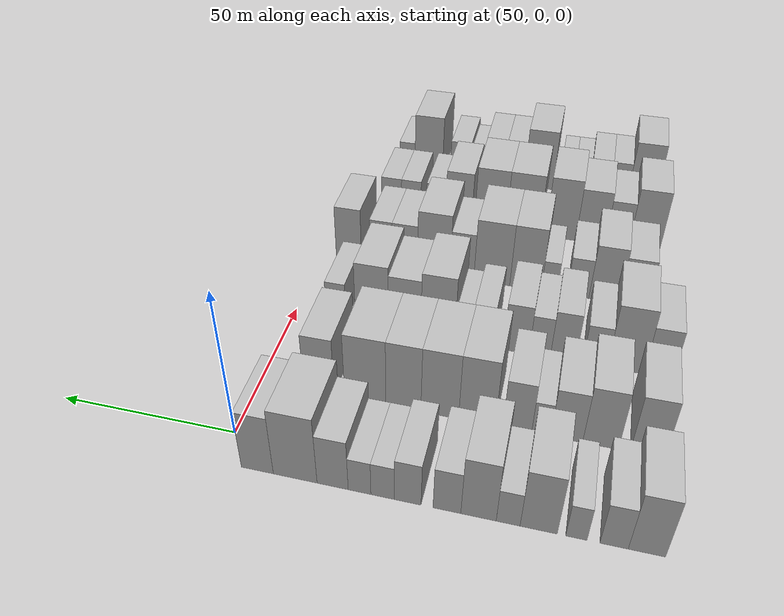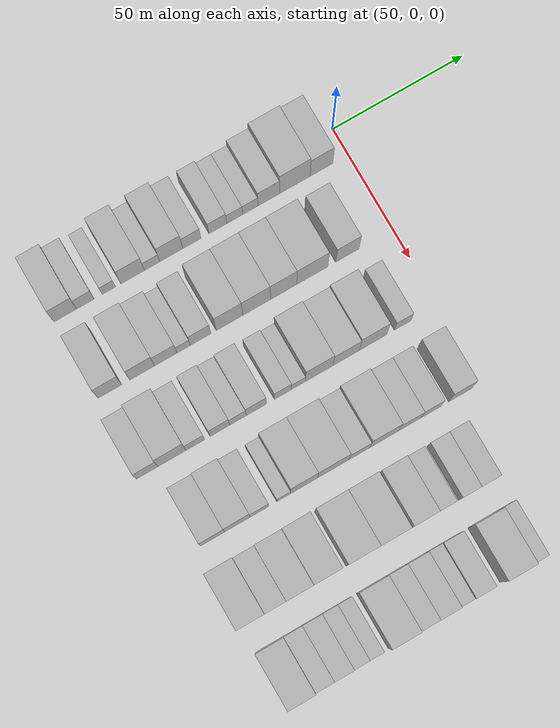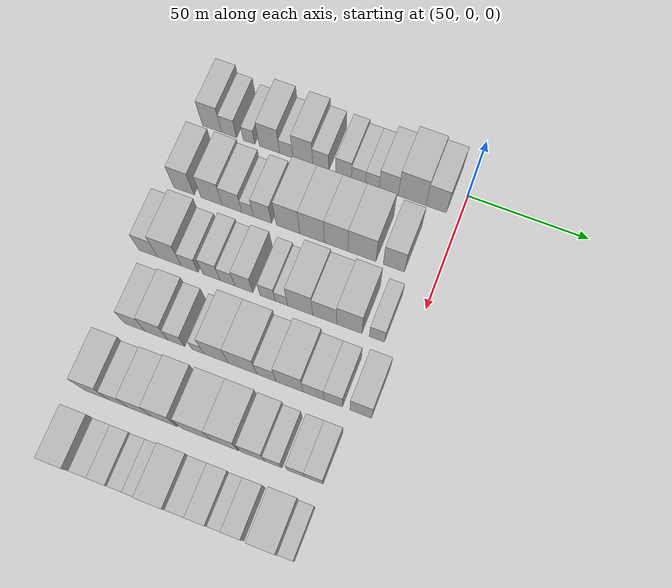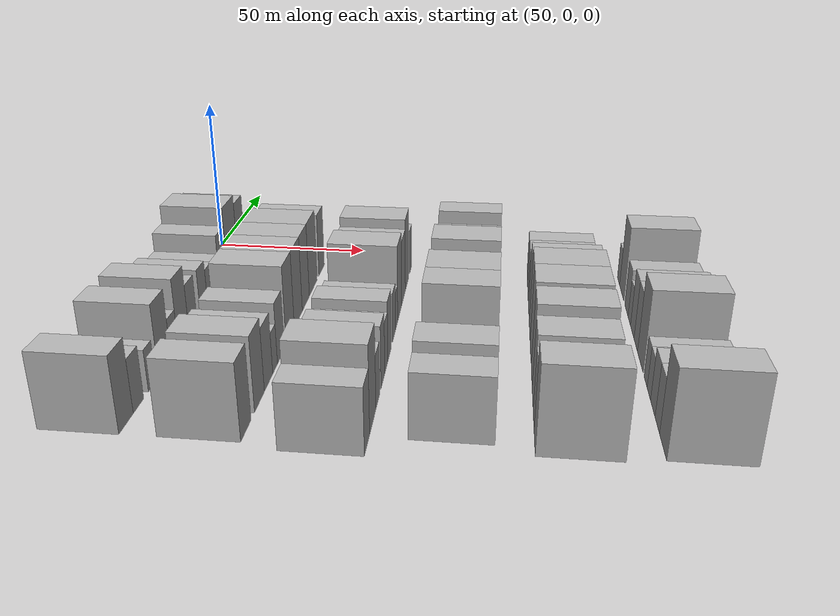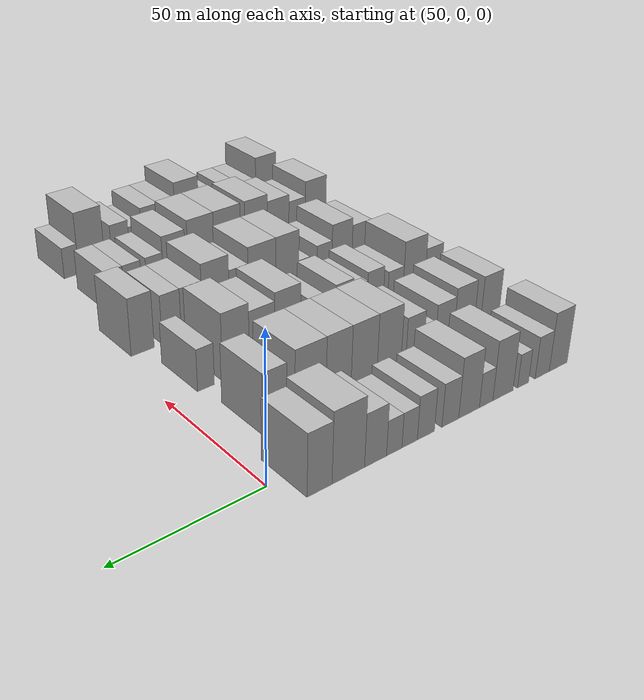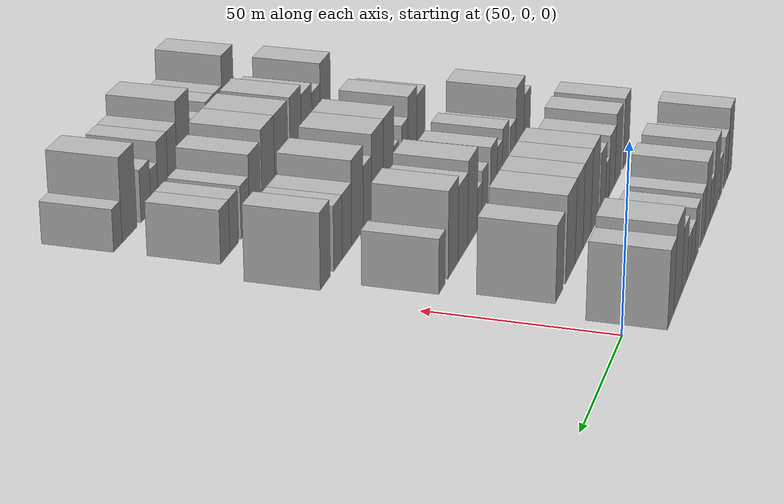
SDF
<sdf version="1.6">
 <world name="default">
  <model name="building_45">
   <static>1</static>
   <pose>50.0000 -106.6176 0 0.000000 0.000000 0.000000</pose>
   <link name="link">
    <pose>0 0 10.50 0 0 0</pose>
    <collision name="collision"><geometry><box><size>20.0000 8.4797 21.0000</size></box></geometry></collision>
    <visual name="visual">
     <cast_shadows>0</cast_shadows>
     <geometry><box><size>20.0000 8.4797 21.0000</size></box></geometry>
     <material>
      <script>
       <uri>model://HANNAS_wall/materials/scripts</uri>
       <uri>model://HANNAS_wall/materials/textures</uri>
       <name>vrc/HANNAS_wall</name>
      </script>
     </material>
    </visual>
   </link>
  </model>
  <model name="building_46">
   <static>1</static>
   <pose>50.0000 -99.1205 0 0.000000 0.000000 0.000000</pose>
   <link name="link">
    <pose>0 0 7.50 0 0 0</pose>
    <collision name="collision"><geometry><box><size>20.0000 6.5144 15.0000</size></box></geometry></collision>
    <visual name="visual">
     <cast_shadows>0</cast_shadows>
     <geometry><box><size>20.0000 6.5144 15.0000</size></box></geometry>
     <material>
      <script>
       <uri>model://HANNAS_wall/materials/scripts</uri>
       <uri>model://HANNAS_wall/materials/textures</uri>
       <name>vrc/HANNAS_wall</name>
      </script>
     </material>
    </visual>
   </link>
  </model>
  <model name="building_47">
   <static>1</static>
   <pose>50.0000 -90.3728 0 0.000000 0.000000 0.000000</pose>
   <link name="link">
    <pose>0 0 6.00 0 0 0</pose>
    <collision name="collision"><geometry><box><size>20.0000 4.9810 12.0000</size></box></geometry></collision>
    <visual name="visual">
     <cast_shadows>0</cast_shadows>
     <geometry><box><size>20.0000 4.9810 12.0000</size></box></geometry>
     <material>
      <script>
       <uri>model://HANNAS_wall/materials/scripts</uri>
       <uri>model://HANNAS_wall/materials/textures</uri>
       <name>vrc/HANNAS_wall</name>
      </script>
     </material>
    </visual>
   </link>
  </model>
  <model name="building_48">
   <static>1</static>
   <pose>50.0000 -81.4564 0 0.000000 0.000000 0.000000</pose>
   <link name="link">
    <pose>0 0 10.50 0 0 0</pose>
    <collision name="collision"><geometry><box><size>20.0000 8.8519 21.0000</size></box></geometry></collision>
    <visual name="visual">
     <cast_shadows>0</cast_shadows>
     <geometry><box><size>20.0000 8.8519 21.0000</size></box></geometry>
     <material>
      <script>
       <uri>model://HANNAS_wall/materials/scripts</uri>
       <uri>model://HANNAS_wall/materials/textures</uri>
       <name>vrc/HANNAS_wall</name>
      </script>
     </material>
    </visual>
   </link>
  </model>
  <model name="building_49">
   <static>1</static>
   <pose>50.0000 -74.1553 0 0.000000 0.000000 0.000000</pose>
   <link name="link">
    <pose>0 0 6.00 0 0 0</pose>
    <collision name="collision"><geometry><box><size>20.0000 5.7502 12.0000</size></box></geometry></collision>
    <visual name="visual">
     <cast_shadows>0</cast_shadows>
     <geometry><box><size>20.0000 5.7502 12.0000</size></box></geometry>
     <material>
      <script>
       <uri>model://HANNAS_wall/materials/scripts</uri>
       <uri>model://HANNAS_wall/materials/textures</uri>
       <name>vrc/HANNAS_wall</name>
      </script>
     </material>
    </visual>
   </link>
  </model>
  <model name="building_50">
   <static>1</static>
   <pose>50.0000 -66.9505 0 0.000000 0.000000 0.000000</pose>
   <link name="link">
    <pose>0 0 10.50 0 0 0</pose>
    <collision name="collision"><geometry><box><size>20.0000 8.6593 21.0000</size></box></geometry></collision>
    <visual name="visual">
     <cast_shadows>0</cast_shadows>
     <geometry><box><size>20.0000 8.6593 21.0000</size></box></geometry>
     <material>
      <script>
       <uri>model://HANNAS_wall/materials/scripts</uri>
       <uri>model://HANNAS_wall/materials/textures</uri>
       <name>vrc/HANNAS_wall</name>
      </script>
     </material>
    </visual>
   </link>
  </model>
  <model name="building_51">
   <static>1</static>
   <pose>50.0000 -59.1784 0 0.000000 0.000000 0.000000</pose>
   <link name="link">
    <pose>0 0 7.50 0 0 0</pose>
    <collision name="collision"><geometry><box><size>20.0000 6.8849 15.0000</size></box></geometry></collision>
    <visual name="visual">
     <cast_shadows>0</cast_shadows>
     <geometry><box><size>20.0000 6.8849 15.0000</size></box></geometry>
     <material>
      <script>
       <uri>model://HANNAS_wall/materials/scripts</uri>
       <uri>model://HANNAS_wall/materials/textures</uri>
       <name>vrc/HANNAS_wall</name>
      </script>
     </material>
    </visual>
   </link>
  </model>
  <model name="building_52">
   <static>1</static>
   <pose>50.0000 -49.3642 0 0.000000 0.000000 0.000000</pose>
   <link name="link">
    <pose>0 0 7.50 0 0 0</pose>
    <collision name="collision"><geometry><box><size>20.0000 6.7436 15.0000</size></box></geometry></collision>
    <visual name="visual">
     <cast_shadows>0</cast_shadows>
     <geometry><box><size>20.0000 6.7436 15.0000</size></box></geometry>
     <material>
      <script>
       <uri>model://HANNAS_wall/materials/scripts</uri>
       <uri>model://HANNAS_wall/materials/textures</uri>
       <name>vrc/HANNAS_wall</name>
      </script>
     </material>
    </visual>
   </link>
  </model>
  <model name="building_53">
   <static>1</static>
   <pose>50.0000 -43.0074 0 0.000000 0.000000 0.000000</pose>
   <link name="link">
    <pose>0 0 6.00 0 0 0</pose>
    <collision name="collision"><geometry><box><size>20.0000 5.9699 12.0000</size></box></geometry></collision>
    <visual name="visual">
     <cast_shadows>0</cast_shadows>
     <geometry><box><size>20.0000 5.9699 12.0000</size></box></geometry>
     <material>
      <script>
       <uri>model://HANNAS_wall/materials/scripts</uri>
       <uri>model://HANNAS_wall/materials/textures</uri>
       <name>vrc/HANNAS_wall</name>
      </script>
     </material>
    </visual>
   </link>
  </model>
  <model name="building_54">
   <static>1</static>
   <pose>50.0000 -37.0977 0 0.000000 0.000000 0.000000</pose>
   <link name="link">
    <pose>0 0 6.00 0 0 0</pose>
    <collision name="collision"><geometry><box><size>20.0000 5.8495 12.0000</size></box></geometry></collision>
    <visual name="visual">
     <cast_shadows>0</cast_shadows>
     <geometry><box><size>20.0000 5.8495 12.0000</size></box></geometry>
     <material>
      <script>
       <uri>model://HANNAS_wall/materials/scripts</uri>
       <uri>model://HANNAS_wall/materials/textures</uri>
       <name>vrc/HANNAS_wall</name>
      </script>
     </material>
    </visual>
   </link>
  </model>
  <model name="building_55">
   <static>1</static>
   <pose>50.0000 -30.1137 0 0.000000 0.000000 0.000000</pose>
   <link name="link">
    <pose>0 0 9.00 0 0 0</pose>
    <collision name="collision"><geometry><box><size>20.0000 8.1184 18.0000</size></box></geometry></collision>
    <visual name="visual">
     <cast_shadows>0</cast_shadows>
     <geometry><box><size>20.0000 8.1184 18.0000</size></box></geometry>
     <material>
      <script>
       <uri>model://HANNAS_wall/materials/scripts</uri>
       <uri>model://HANNAS_wall/materials/textures</uri>
       <name>vrc/HANNAS_wall</name>
      </script>
     </material>
    </visual>
   </link>
  </model>
  <model name="building_56">
   <static>1</static>
   <pose>50.0000 -20.2414 0 0.000000 0.000000 0.000000</pose>
   <link name="link">
    <pose>0 0 12.00 0 0 0</pose>
    <collision name="collision"><geometry><box><size>20.0000 11.6262 24.0000</size></box></geometry></collision>
    <visual name="visual">
     <cast_shadows>0</cast_shadows>
     <geometry><box><size>20.0000 11.6262 24.0000</size></box></geometry>
     <material>
      <script>
       <uri>model://HANNAS_wall/materials/scripts</uri>
       <uri>model://HANNAS_wall/materials/textures</uri>
       <name>vrc/HANNAS_wall</name>
      </script>
     </material>
    </visual>
   </link>
  </model>
  <model name="building_57">
   <static>1</static>
   <pose>50.0000 -10.1097 0 0.000000 0.000000 0.000000</pose>
   <link name="link">
    <pose>0 0 10.50 0 0 0</pose>
    <collision name="collision"><geometry><box><size>20.0000 8.6371 21.0000</size></box></geometry></collision>
    <visual name="visual">
     <cast_shadows>0</cast_shadows>
     <geometry><box><size>20.0000 8.6371 21.0000</size></box></geometry>
     <material>
      <script>
       <uri>model://HANNAS_wall/materials/scripts</uri>
       <uri>model://HANNAS_wall/materials/textures</uri>
       <name>vrc/HANNAS_wall</name>
      </script>
     </material>
    </visual>
   </link>
  </model>
  <model name="building_163">
   <static>1</static>
   <pose>79.0000 -106.3267 0 0.000000 0.000000 0.000000</pose>
   <link name="link">
    <pose>0 0 10.50 0 0 0</pose>
    <collision name="collision"><geometry><box><size>20.0000 8.7623 21.0000</size></box></geometry></collision>
    <visual name="visual">
     <cast_shadows>0</cast_shadows>
     <geometry><box><size>20.0000 8.7623 21.0000</size></box></geometry>
     <material>
      <script>
       <uri>model://HANNAS_wall/materials/scripts</uri>
       <uri>model://HANNAS_wall/materials/textures</uri>
       <name>vrc/HANNAS_wall</name>
      </script>
     </material>
    </visual>
   </link>
  </model>
  <model name="building_164">
   <static>1</static>
   <pose>79.0000 -94.3277 0 0.000000 0.000000 0.000000</pose>
   <link name="link">
    <pose>0 0 10.50 0 0 0</pose>
    <collision name="collision"><geometry><box><size>20.0000 9.2357 21.0000</size></box></geometry></collision>
    <visual name="visual">
     <cast_shadows>0</cast_shadows>
     <geometry><box><size>20.0000 9.2357 21.0000</size></box></geometry>
     <material>
      <script>
       <uri>model://HANNAS_wall/materials/scripts</uri>
       <uri>model://HANNAS_wall/materials/textures</uri>
       <name>vrc/HANNAS_wall</name>
      </script>
     </material>
    </visual>
   </link>
  </model>
  <model name="building_165">
   <static>1</static>
   <pose>79.0000 -85.5269 0 0.000000 0.000000 0.000000</pose>
   <link name="link">
    <pose>0 0 9.00 0 0 0</pose>
    <collision name="collision"><geometry><box><size>20.0000 8.3660 18.0000</size></box></geometry></collision>
    <visual name="visual">
     <cast_shadows>0</cast_shadows>
     <geometry><box><size>20.0000 8.3660 18.0000</size></box></geometry>
     <material>
      <script>
       <uri>model://HANNAS_wall/materials/scripts</uri>
       <uri>model://HANNAS_wall/materials/textures</uri>
       <name>vrc/HANNAS_wall</name>
      </script>
     </material>
    </visual>
   </link>
  </model>
  <model name="building_166">
   <static>1</static>
   <pose>79.0000 -78.8418 0 0.000000 0.000000 0.000000</pose>
   <link name="link">
    <pose>0 0 6.00 0 0 0</pose>
    <collision name="collision"><geometry><box><size>20.0000 5.0042 12.0000</size></box></geometry></collision>
    <visual name="visual">
     <cast_shadows>0</cast_shadows>
     <geometry><box><size>20.0000 5.0042 12.0000</size></box></geometry>
     <material>
      <script>
       <uri>model://HANNAS_wall/materials/scripts</uri>
       <uri>model://HANNAS_wall/materials/textures</uri>
       <name>vrc/HANNAS_wall</name>
      </script>
     </material>
    </visual>
   </link>
  </model>
  <model name="building_167">
   <static>1</static>
   <pose>79.0000 -72.4954 0 0.000000 0.000000 0.000000</pose>
   <link name="link">
    <pose>0 0 9.00 0 0 0</pose>
    <collision name="collision"><geometry><box><size>20.0000 7.6885 18.0000</size></box></geometry></collision>
    <visual name="visual">
     <cast_shadows>0</cast_shadows>
     <geometry><box><size>20.0000 7.6885 18.0000</size></box></geometry>
     <material>
      <script>
       <uri>model://HANNAS_wall/materials/scripts</uri>
       <uri>model://HANNAS_wall/materials/textures</uri>
       <name>vrc/HANNAS_wall</name>
      </script>
     </material>
    </visual>
   </link>
  </model>
  <model name="building_168">
   <static>1</static>
   <pose>79.0000 -61.6545 0 0.000000 0.000000 0.000000</pose>
   <link name="link">
    <pose>0 0 12.00 0 0 0</pose>
    <collision name="collision"><geometry><box><size>20.0000 9.9933 24.0000</size></box></geometry></collision>
    <visual name="visual">
     <cast_shadows>0</cast_shadows>
     <geometry><box><size>20.0000 9.9933 24.0000</size></box></geometry>
     <material>
      <script>
       <uri>model://HANNAS_wall/materials/scripts</uri>
       <uri>model://HANNAS_wall/materials/textures</uri>
       <name>vrc/HANNAS_wall</name>
      </script>
     </material>
    </visual>
   </link>
  </model>
  <model name="building_169">
   <static>1</static>
   <pose>79.0000 -51.4443 0 0.000000 0.000000 0.000000</pose>
   <link name="link">
    <pose>0 0 12.00 0 0 0</pose>
    <collision name="collision"><geometry><box><size>20.0000 10.4271 24.0000</size></box></geometry></collision>
    <visual name="visual">
     <cast_shadows>0</cast_shadows>
     <geometry><box><size>20.0000 10.4271 24.0000</size></box></geometry>
     <material>
      <script>
       <uri>model://HANNAS_wall/materials/scripts</uri>
       <uri>model://HANNAS_wall/materials/textures</uri>
       <name>vrc/HANNAS_wall</name>
      </script>
     </material>
    </visual>
   </link>
  </model>
  <model name="building_170">
   <static>1</static>
   <pose>79.0000 -41.3080 0 0.000000 0.000000 0.000000</pose>
   <link name="link">
    <pose>0 0 12.00 0 0 0</pose>
    <collision name="collision"><geometry><box><size>20.0000 9.8457 24.0000</size></box></geometry></collision>
    <visual name="visual">
     <cast_shadows>0</cast_shadows>
     <geometry><box><size>20.0000 9.8457 24.0000</size></box></geometry>
     <material>
      <script>
       <uri>model://HANNAS_wall/materials/scripts</uri>
       <uri>model://HANNAS_wall/materials/textures</uri>
       <name>vrc/HANNAS_wall</name>
      </script>
     </material>
    </visual>
   </link>
  </model>
  <model name="building_171">
   <static>1</static>
   <pose>79.0000 -30.5276 0 0.000000 0.000000 0.000000</pose>
   <link name="link">
    <pose>0 0 12.00 0 0 0</pose>
    <collision name="collision"><geometry><box><size>20.0000 11.7151 24.0000</size></box></geometry></collision>
    <visual name="visual">
     <cast_shadows>0</cast_shadows>
     <geometry><box><size>20.0000 11.7151 24.0000</size></box></geometry>
     <material>
      <script>
       <uri>model://HANNAS_wall/materials/scripts</uri>
       <uri>model://HANNAS_wall/materials/textures</uri>
       <name>vrc/HANNAS_wall</name>
      </script>
     </material>
    </visual>
   </link>
  </model>
  <model name="building_172">
   <static>1</static>
   <pose>79.0000 -17.2524 0 0.000000 0.000000 0.000000</pose>
   <link name="link">
    <pose>0 0 10.50 0 0 0</pose>
    <collision name="collision"><geometry><box><size>20.0000 8.8352 21.0000</size></box></geometry></collision>
    <visual name="visual">
     <cast_shadows>0</cast_shadows>
     <geometry><box><size>20.0000 8.8352 21.0000</size></box></geometry>
     <material>
      <script>
       <uri>model://HANNAS_wall/materials/scripts</uri>
       <uri>model://HANNAS_wall/materials/textures</uri>
       <name>vrc/HANNAS_wall</name>
      </script>
     </material>
    </visual>
   </link>
  </model>
  <model name="building_276">
   <static>1</static>
   <pose>108.0000 -108.8894 0 0.000000 0.000000 0.000000</pose>
   <link name="link">
    <pose>0 0 9.00 0 0 0</pose>
    <collision name="collision"><geometry><box><size>20.0000 7.9887 18.0000</size></box></geometry></collision>
    <visual name="visual">
     <cast_shadows>0</cast_shadows>
     <geometry><box><size>20.0000 7.9887 18.0000</size></box></geometry>
     <material>
      <script>
       <uri>model://HANNAS_wall/materials/scripts</uri>
       <uri>model://HANNAS_wall/materials/textures</uri>
       <name>vrc/HANNAS_wall</name>
      </script>
     </material>
    </visual>
   </link>
  </model>
  <model name="building_277">
   <static>1</static>
   <pose>108.0000 -99.7335 0 0.000000 0.000000 0.000000</pose>
   <link name="link">
    <pose>0 0 12.00 0 0 0</pose>
    <collision name="collision"><geometry><box><size>20.0000 10.3232 24.0000</size></box></geometry></collision>
    <visual name="visual">
     <cast_shadows>0</cast_shadows>
     <geometry><box><size>20.0000 10.3232 24.0000</size></box></geometry>
     <material>
      <script>
       <uri>model://HANNAS_wall/materials/scripts</uri>
       <uri>model://HANNAS_wall/materials/textures</uri>
       <name>vrc/HANNAS_wall</name>
      </script>
     </material>
    </visual>
   </link>
  </model>
  <model name="building_278">
   <static>1</static>
   <pose>108.0000 -91.0839 0 0.000000 0.000000 0.000000</pose>
   <link name="link">
    <pose>0 0 7.50 0 0 0</pose>
    <collision name="collision"><geometry><box><size>20.0000 6.9760 15.0000</size></box></geometry></collision>
    <visual name="visual">
     <cast_shadows>0</cast_shadows>
     <geometry><box><size>20.0000 6.9760 15.0000</size></box></geometry>
     <material>
      <script>
       <uri>model://HANNAS_wall/materials/scripts</uri>
       <uri>model://HANNAS_wall/materials/textures</uri>
       <name>vrc/HANNAS_wall</name>
      </script>
     </material>
    </visual>
   </link>
  </model>
  <model name="building_279">
   <static>1</static>
   <pose>108.0000 -81.9476 0 0.000000 0.000000 0.000000</pose>
   <link name="link">
    <pose>0 0 9.00 0 0 0</pose>
    <collision name="collision"><geometry><box><size>20.0000 7.2966 18.0000</size></box></geometry></collision>
    <visual name="visual">
     <cast_shadows>0</cast_shadows>
     <geometry><box><size>20.0000 7.2966 18.0000</size></box></geometry>
     <material>
      <script>
       <uri>model://HANNAS_wall/materials/scripts</uri>
       <uri>model://HANNAS_wall/materials/textures</uri>
       <name>vrc/HANNAS_wall</name>
      </script>
     </material>
    </visual>
   </link>
  </model>
  <model name="building_280">
   <static>1</static>
   <pose>108.0000 -75.2270 0 0.000000 0.000000 0.000000</pose>
   <link name="link">
    <pose>0 0 7.50 0 0 0</pose>
    <collision name="collision"><geometry><box><size>20.0000 6.1446 15.0000</size></box></geometry></collision>
    <visual name="visual">
     <cast_shadows>0</cast_shadows>
     <geometry><box><size>20.0000 6.1446 15.0000</size></box></geometry>
     <material>
      <script>
       <uri>model://HANNAS_wall/materials/scripts</uri>
       <uri>model://HANNAS_wall/materials/textures</uri>
       <name>vrc/HANNAS_wall</name>
      </script>
     </material>
    </visual>
   </link>
  </model>
  <model name="building_281">
   <static>1</static>
   <pose>108.0000 -68.3723 0 0.000000 0.000000 0.000000</pose>
   <link name="link">
    <pose>0 0 9.00 0 0 0</pose>
    <collision name="collision"><geometry><box><size>20.0000 7.5647 18.0000</size></box></geometry></collision>
    <visual name="visual">
     <cast_shadows>0</cast_shadows>
     <geometry><box><size>20.0000 7.5647 18.0000</size></box></geometry>
     <material>
      <script>
       <uri>model://HANNAS_wall/materials/scripts</uri>
       <uri>model://HANNAS_wall/materials/textures</uri>
       <name>vrc/HANNAS_wall</name>
      </script>
     </material>
    </visual>
   </link>
  </model>
  <model name="building_282">
   <static>1</static>
   <pose>108.0000 -58.4240 0 0.000000 0.000000 0.000000</pose>
   <link name="link">
    <pose>0 0 7.50 0 0 0</pose>
    <collision name="collision"><geometry><box><size>20.0000 6.3321 15.0000</size></box></geometry></collision>
    <visual name="visual">
     <cast_shadows>0</cast_shadows>
     <geometry><box><size>20.0000 6.3321 15.0000</size></box></geometry>
     <material>
      <script>
       <uri>model://HANNAS_wall/materials/scripts</uri>
       <uri>model://HANNAS_wall/materials/textures</uri>
       <name>vrc/HANNAS_wall</name>
      </script>
     </material>
    </visual>
   </link>
  </model>
  <model name="building_283">
   <static>1</static>
   <pose>108.0000 -52.6528 0 0.000000 0.000000 0.000000</pose>
   <link name="link">
    <pose>0 0 6.00 0 0 0</pose>
    <collision name="collision"><geometry><box><size>20.0000 5.2102 12.0000</size></box></geometry></collision>
    <visual name="visual">
     <cast_shadows>0</cast_shadows>
     <geometry><box><size>20.0000 5.2102 12.0000</size></box></geometry>
     <material>
      <script>
       <uri>model://HANNAS_wall/materials/scripts</uri>
       <uri>model://HANNAS_wall/materials/textures</uri>
       <name>vrc/HANNAS_wall</name>
      </script>
     </material>
    </visual>
   </link>
  </model>
  <model name="building_284">
   <static>1</static>
   <pose>108.0000 -44.8883 0 0.000000 0.000000 0.000000</pose>
   <link name="link">
    <pose>0 0 12.00 0 0 0</pose>
    <collision name="collision"><geometry><box><size>20.0000 10.3189 24.0000</size></box></geometry></collision>
    <visual name="visual">
     <cast_shadows>0</cast_shadows>
     <geometry><box><size>20.0000 10.3189 24.0000</size></box></geometry>
     <material>
      <script>
       <uri>model://HANNAS_wall/materials/scripts</uri>
       <uri>model://HANNAS_wall/materials/textures</uri>
       <name>vrc/HANNAS_wall</name>
      </script>
     </material>
    </visual>
   </link>
  </model>
  <model name="building_285">
   <static>1</static>
   <pose>108.0000 -34.7477 0 0.000000 0.000000 0.000000</pose>
   <link name="link">
    <pose>0 0 10.50 0 0 0</pose>
    <collision name="collision"><geometry><box><size>20.0000 9.9623 21.0000</size></box></geometry></collision>
    <visual name="visual">
     <cast_shadows>0</cast_shadows>
     <geometry><box><size>20.0000 9.9623 21.0000</size></box></geometry>
     <material>
      <script>
       <uri>model://HANNAS_wall/materials/scripts</uri>
       <uri>model://HANNAS_wall/materials/textures</uri>
       <name>vrc/HANNAS_wall</name>
      </script>
     </material>
    </visual>
   </link>
  </model>
  <model name="building_286">
   <static>1</static>
   <pose>108.0000 -24.6324 0 0.000000 0.000000 0.000000</pose>
   <link name="link">
    <pose>0 0 12.00 0 0 0</pose>
    <collision name="collision"><geometry><box><size>20.0000 10.2683 24.0000</size></box></geometry></collision>
    <visual name="visual">
     <cast_shadows>0</cast_shadows>
     <geometry><box><size>20.0000 10.2683 24.0000</size></box></geometry>
     <material>
      <script>
       <uri>model://HANNAS_wall/materials/scripts</uri>
       <uri>model://HANNAS_wall/materials/textures</uri>
       <name>vrc/HANNAS_wall</name>
      </script>
     </material>
    </visual>
   </link>
  </model>
  <model name="building_287">
   <static>1</static>
   <pose>108.0000 -13.4036 0 0.000000 0.000000 0.000000</pose>
   <link name="link">
    <pose>0 0 7.50 0 0 0</pose>
    <collision name="collision"><geometry><box><size>20.0000 6.1892 15.0000</size></box></geometry></collision>
    <visual name="visual">
     <cast_shadows>0</cast_shadows>
     <geometry><box><size>20.0000 6.1892 15.0000</size></box></geometry>
     <material>
      <script>
       <uri>model://HANNAS_wall/materials/scripts</uri>
       <uri>model://HANNAS_wall/materials/textures</uri>
       <name>vrc/HANNAS_wall</name>
      </script>
     </material>
    </visual>
   </link>
  </model>
  <model name="building_385">
   <static>1</static>
   <pose>137.0000 -101.2459 0 0.000000 0.000000 0.000000</pose>
   <link name="link">
    <pose>0 0 9.00 0 0 0</pose>
    <collision name="collision"><geometry><box><size>20.0000 8.8063 18.0000</size></box></geometry></collision>
    <visual name="visual">
     <cast_shadows>0</cast_shadows>
     <geometry><box><size>20.0000 8.8063 18.0000</size></box></geometry>
     <material>
      <script>
       <uri>model://HANNAS_wall/materials/scripts</uri>
       <uri>model://HANNAS_wall/materials/textures</uri>
       <name>vrc/HANNAS_wall</name>
      </script>
     </material>
    </visual>
   </link>
  </model>
  <model name="building_386">
   <static>1</static>
   <pose>137.0000 -92.1467 0 0.000000 0.000000 0.000000</pose>
   <link name="link">
    <pose>0 0 10.50 0 0 0</pose>
    <collision name="collision"><geometry><box><size>20.0000 9.3921 21.0000</size></box></geometry></collision>
    <visual name="visual">
     <cast_shadows>0</cast_shadows>
     <geometry><box><size>20.0000 9.3921 21.0000</size></box></geometry>
     <material>
      <script>
       <uri>model://HANNAS_wall/materials/scripts</uri>
       <uri>model://HANNAS_wall/materials/textures</uri>
       <name>vrc/HANNAS_wall</name>
      </script>
     </material>
    </visual>
   </link>
  </model>
  <model name="building_387">
   <static>1</static>
   <pose>137.0000 -84.0024 0 0.000000 0.000000 0.000000</pose>
   <link name="link">
    <pose>0 0 7.50 0 0 0</pose>
    <collision name="collision"><geometry><box><size>20.0000 6.8966 15.0000</size></box></geometry></collision>
    <visual name="visual">
     <cast_shadows>0</cast_shadows>
     <geometry><box><size>20.0000 6.8966 15.0000</size></box></geometry>
     <material>
      <script>
       <uri>model://HANNAS_wall/materials/scripts</uri>
       <uri>model://HANNAS_wall/materials/textures</uri>
       <name>vrc/HANNAS_wall</name>
      </script>
     </material>
    </visual>
   </link>
  </model>
  <model name="building_388">
   <static>1</static>
   <pose>137.0000 -75.0271 0 0.000000 0.000000 0.000000</pose>
   <link name="link">
    <pose>0 0 6.00 0 0 0</pose>
    <collision name="collision"><geometry><box><size>20.0000 5.0540 12.0000</size></box></geometry></collision>
    <visual name="visual">
     <cast_shadows>0</cast_shadows>
     <geometry><box><size>20.0000 5.0540 12.0000</size></box></geometry>
     <material>
      <script>
       <uri>model://HANNAS_wall/materials/scripts</uri>
       <uri>model://HANNAS_wall/materials/textures</uri>
       <name>vrc/HANNAS_wall</name>
      </script>
     </material>
    </visual>
   </link>
  </model>
  <model name="building_389">
   <static>1</static>
   <pose>137.0000 -67.4796 0 0.000000 0.000000 0.000000</pose>
   <link name="link">
    <pose>0 0 12.00 0 0 0</pose>
    <collision name="collision"><geometry><box><size>20.0000 10.0409 24.0000</size></box></geometry></collision>
    <visual name="visual">
     <cast_shadows>0</cast_shadows>
     <geometry><box><size>20.0000 10.0409 24.0000</size></box></geometry>
     <material>
      <script>
       <uri>model://HANNAS_wall/materials/scripts</uri>
       <uri>model://HANNAS_wall/materials/textures</uri>
       <name>vrc/HANNAS_wall</name>
      </script>
     </material>
    </visual>
   </link>
  </model>
  <model name="building_390">
   <static>1</static>
   <pose>137.0000 -56.6319 0 0.000000 0.000000 0.000000</pose>
   <link name="link">
    <pose>0 0 12.00 0 0 0</pose>
    <collision name="collision"><geometry><box><size>20.0000 11.6545 24.0000</size></box></geometry></collision>
    <visual name="visual">
     <cast_shadows>0</cast_shadows>
     <geometry><box><size>20.0000 11.6545 24.0000</size></box></geometry>
     <material>
      <script>
       <uri>model://HANNAS_wall/materials/scripts</uri>
       <uri>model://HANNAS_wall/materials/textures</uri>
       <name>vrc/HANNAS_wall</name>
      </script>
     </material>
    </visual>
   </link>
  </model>
  <model name="building_391">
   <static>1</static>
   <pose>137.0000 -46.8987 0 0.000000 0.000000 0.000000</pose>
   <link name="link">
    <pose>0 0 9.00 0 0 0</pose>
    <collision name="collision"><geometry><box><size>20.0000 7.8121 18.0000</size></box></geometry></collision>
    <visual name="visual">
     <cast_shadows>0</cast_shadows>
     <geometry><box><size>20.0000 7.8121 18.0000</size></box></geometry>
     <material>
      <script>
       <uri>model://HANNAS_wall/materials/scripts</uri>
       <uri>model://HANNAS_wall/materials/textures</uri>
       <name>vrc/HANNAS_wall</name>
      </script>
     </material>
    </visual>
   </link>
  </model>
  <model name="building_392">
   <static>1</static>
   <pose>137.0000 -37.5493 0 0.000000 0.000000 0.000000</pose>
   <link name="link">
    <pose>0 0 12.00 0 0 0</pose>
    <collision name="collision"><geometry><box><size>20.0000 10.8866 24.0000</size></box></geometry></collision>
    <visual name="visual">
     <cast_shadows>0</cast_shadows>
     <geometry><box><size>20.0000 10.8866 24.0000</size></box></geometry>
     <material>
      <script>
       <uri>model://HANNAS_wall/materials/scripts</uri>
       <uri>model://HANNAS_wall/materials/textures</uri>
       <name>vrc/HANNAS_wall</name>
      </script>
     </material>
    </visual>
   </link>
  </model>
  <model name="building_393">
   <static>1</static>
   <pose>137.0000 -27.8930 0 0.000000 0.000000 0.000000</pose>
   <link name="link">
    <pose>0 0 9.00 0 0 0</pose>
    <collision name="collision"><geometry><box><size>20.0000 8.4260 18.0000</size></box></geometry></collision>
    <visual name="visual">
     <cast_shadows>0</cast_shadows>
     <geometry><box><size>20.0000 8.4260 18.0000</size></box></geometry>
     <material>
      <script>
       <uri>model://HANNAS_wall/materials/scripts</uri>
       <uri>model://HANNAS_wall/materials/textures</uri>
       <name>vrc/HANNAS_wall</name>
      </script>
     </material>
    </visual>
   </link>
  </model>
  <model name="building_394">
   <static>1</static>
   <pose>137.0000 -19.9711 0 0.000000 0.000000 0.000000</pose>
   <link name="link">
    <pose>0 0 9.00 0 0 0</pose>
    <collision name="collision"><geometry><box><size>20.0000 7.4180 18.0000</size></box></geometry></collision>
    <visual name="visual">
     <cast_shadows>0</cast_shadows>
     <geometry><box><size>20.0000 7.4180 18.0000</size></box></geometry>
     <material>
      <script>
       <uri>model://HANNAS_wall/materials/scripts</uri>
       <uri>model://HANNAS_wall/materials/textures</uri>
       <name>vrc/HANNAS_wall</name>
      </script>
     </material>
    </visual>
   </link>
  </model>
  <model name="building_395">
   <static>1</static>
   <pose>137.0000 -8.9519 0 0.000000 0.000000 0.000000</pose>
   <link name="link">
    <pose>0 0 10.50 0 0 0</pose>
    <collision name="collision"><geometry><box><size>20.0000 8.6204 21.0000</size></box></geometry></collision>
    <visual name="visual">
     <cast_shadows>0</cast_shadows>
     <geometry><box><size>20.0000 8.6204 21.0000</size></box></geometry>
     <material>
      <script>
       <uri>model://HANNAS_wall/materials/scripts</uri>
       <uri>model://HANNAS_wall/materials/textures</uri>
       <name>vrc/HANNAS_wall</name>
      </script>
     </material>
    </visual>
   </link>
  </model>
  <model name="building_496">
   <static>1</static>
   <pose>166.0000 -103.7379 0 0.000000 0.000000 0.000000</pose>
   <link name="link">
    <pose>0 0 12.00 0 0 0</pose>
    <collision name="collision"><geometry><box><size>20.0000 10.0830 24.0000</size></box></geometry></collision>
    <visual name="visual">
     <cast_shadows>0</cast_shadows>
     <geometry><box><size>20.0000 10.0830 24.0000</size></box></geometry>
     <material>
      <script>
       <uri>model://HANNAS_wall/materials/scripts</uri>
       <uri>model://HANNAS_wall/materials/textures</uri>
       <name>vrc/HANNAS_wall</name>
      </script>
     </material>
    </visual>
   </link>
  </model>
  <model name="building_497">
   <static>1</static>
   <pose>166.0000 -94.8346 0 0.000000 0.000000 0.000000</pose>
   <link name="link">
    <pose>0 0 9.00 0 0 0</pose>
    <collision name="collision"><geometry><box><size>20.0000 7.7237 18.0000</size></box></geometry></collision>
    <visual name="visual">
     <cast_shadows>0</cast_shadows>
     <geometry><box><size>20.0000 7.7237 18.0000</size></box></geometry>
     <material>
      <script>
       <uri>model://HANNAS_wall/materials/scripts</uri>
       <uri>model://HANNAS_wall/materials/textures</uri>
       <name>vrc/HANNAS_wall</name>
      </script>
     </material>
    </visual>
   </link>
  </model>
  <model name="building_498">
   <static>1</static>
   <pose>166.0000 -86.0075 0 0.000000 0.000000 0.000000</pose>
   <link name="link">
    <pose>0 0 10.50 0 0 0</pose>
    <collision name="collision"><geometry><box><size>20.0000 9.9305 21.0000</size></box></geometry></collision>
    <visual name="visual">
     <cast_shadows>0</cast_shadows>
     <geometry><box><size>20.0000 9.9305 21.0000</size></box></geometry>
     <material>
      <script>
       <uri>model://HANNAS_wall/materials/scripts</uri>
       <uri>model://HANNAS_wall/materials/textures</uri>
       <name>vrc/HANNAS_wall</name>
      </script>
     </material>
    </visual>
   </link>
  </model>
  <model name="building_499">
   <static>1</static>
   <pose>166.0000 -75.8857 0 0.000000 0.000000 0.000000</pose>
   <link name="link">
    <pose>0 0 12.00 0 0 0</pose>
    <collision name="collision"><geometry><box><size>20.0000 10.3131 24.0000</size></box></geometry></collision>
    <visual name="visual">
     <cast_shadows>0</cast_shadows>
     <geometry><box><size>20.0000 10.3131 24.0000</size></box></geometry>
     <material>
      <script>
       <uri>model://HANNAS_wall/materials/scripts</uri>
       <uri>model://HANNAS_wall/materials/textures</uri>
       <name>vrc/HANNAS_wall</name>
      </script>
     </material>
    </visual>
   </link>
  </model>
  <model name="building_500">
   <static>1</static>
   <pose>166.0000 -62.9286 0 0.000000 0.000000 0.000000</pose>
   <link name="link">
    <pose>0 0 12.00 0 0 0</pose>
    <collision name="collision"><geometry><box><size>20.0000 11.6013 24.0000</size></box></geometry></collision>
    <visual name="visual">
     <cast_shadows>0</cast_shadows>
     <geometry><box><size>20.0000 11.6013 24.0000</size></box></geometry>
     <material>
      <script>
       <uri>model://HANNAS_wall/materials/scripts</uri>
       <uri>model://HANNAS_wall/materials/textures</uri>
       <name>vrc/HANNAS_wall</name>
      </script>
     </material>
    </visual>
   </link>
  </model>
  <model name="building_501">
   <static>1</static>
   <pose>166.0000 -51.5701 0 0.000000 0.000000 0.000000</pose>
   <link name="link">
    <pose>0 0 12.00 0 0 0</pose>
    <collision name="collision"><geometry><box><size>20.0000 11.1156 24.0000</size></box></geometry></collision>
    <visual name="visual">
     <cast_shadows>0</cast_shadows>
     <geometry><box><size>20.0000 11.1156 24.0000</size></box></geometry>
     <material>
      <script>
       <uri>model://HANNAS_wall/materials/scripts</uri>
       <uri>model://HANNAS_wall/materials/textures</uri>
       <name>vrc/HANNAS_wall</name>
      </script>
     </material>
    </visual>
   </link>
  </model>
  <model name="building_502">
   <static>1</static>
   <pose>166.0000 -40.3298 0 0.000000 0.000000 0.000000</pose>
   <link name="link">
    <pose>0 0 10.50 0 0 0</pose>
    <collision name="collision"><geometry><box><size>20.0000 9.3651 21.0000</size></box></geometry></collision>
    <visual name="visual">
     <cast_shadows>0</cast_shadows>
     <geometry><box><size>20.0000 9.3651 21.0000</size></box></geometry>
     <material>
      <script>
       <uri>model://HANNAS_wall/materials/scripts</uri>
       <uri>model://HANNAS_wall/materials/textures</uri>
       <name>vrc/HANNAS_wall</name>
      </script>
     </material>
    </visual>
   </link>
  </model>
  <model name="building_503">
   <static>1</static>
   <pose>166.0000 -32.2203 0 0.000000 0.000000 0.000000</pose>
   <link name="link">
    <pose>0 0 7.50 0 0 0</pose>
    <collision name="collision"><geometry><box><size>20.0000 6.8538 15.0000</size></box></geometry></collision>
    <visual name="visual">
     <cast_shadows>0</cast_shadows>
     <geometry><box><size>20.0000 6.8538 15.0000</size></box></geometry>
     <material>
      <script>
       <uri>model://HANNAS_wall/materials/scripts</uri>
       <uri>model://HANNAS_wall/materials/textures</uri>
       <name>vrc/HANNAS_wall</name>
      </script>
     </material>
    </visual>
   </link>
  </model>
  <model name="building_504">
   <static>1</static>
   <pose>166.0000 -23.3033 0 0.000000 0.000000 0.000000</pose>
   <link name="link">
    <pose>0 0 7.50 0 0 0</pose>
    <collision name="collision"><geometry><box><size>20.0000 6.9802 15.0000</size></box></geometry></collision>
    <visual name="visual">
     <cast_shadows>0</cast_shadows>
     <geometry><box><size>20.0000 6.9802 15.0000</size></box></geometry>
     <material>
      <script>
       <uri>model://HANNAS_wall/materials/scripts</uri>
       <uri>model://HANNAS_wall/materials/textures</uri>
       <name>vrc/HANNAS_wall</name>
      </script>
     </material>
    </visual>
   </link>
  </model>
  <model name="building_505">
   <static>1</static>
   <pose>166.0000 -16.2168 0 0.000000 0.000000 0.000000</pose>
   <link name="link">
    <pose>0 0 7.50 0 0 0</pose>
    <collision name="collision"><geometry><box><size>20.0000 7.1928 15.0000</size></box></geometry></collision>
    <visual name="visual">
     <cast_shadows>0</cast_shadows>
     <geometry><box><size>20.0000 7.1928 15.0000</size></box></geometry>
     <material>
      <script>
       <uri>model://HANNAS_wall/materials/scripts</uri>
       <uri>model://HANNAS_wall/materials/textures</uri>
       <name>vrc/HANNAS_wall</name>
      </script>
     </material>
    </visual>
   </link>
  </model>
  <model name="building_611">
   <static>1</static>
   <pose>195.0000 -102.2784 0 0.000000 0.000000 0.000000</pose>
   <link name="link">
    <pose>0 0 12.00 0 0 0</pose>
    <collision name="collision"><geometry><box><size>20.0000 10.0805 24.0000</size></box></geometry></collision>
    <visual name="visual">
     <cast_shadows>0</cast_shadows>
     <geometry><box><size>20.0000 10.0805 24.0000</size></box></geometry>
     <material>
      <script>
       <uri>model://HANNAS_wall/materials/scripts</uri>
       <uri>model://HANNAS_wall/materials/textures</uri>
       <name>vrc/HANNAS_wall</name>
      </script>
     </material>
    </visual>
   </link>
  </model>
  <model name="building_612">
   <static>1</static>
   <pose>195.0000 -93.8338 0 0.000000 0.000000 0.000000</pose>
   <link name="link">
    <pose>0 0 7.50 0 0 0</pose>
    <collision name="collision"><geometry><box><size>20.0000 6.8088 15.0000</size></box></geometry></collision>
    <visual name="visual">
     <cast_shadows>0</cast_shadows>
     <geometry><box><size>20.0000 6.8088 15.0000</size></box></geometry>
     <material>
      <script>
       <uri>model://HANNAS_wall/materials/scripts</uri>
       <uri>model://HANNAS_wall/materials/textures</uri>
       <name>vrc/HANNAS_wall</name>
      </script>
     </material>
    </visual>
   </link>
  </model>
  <model name="building_613">
   <static>1</static>
   <pose>195.0000 -86.8240 0 0.000000 0.000000 0.000000</pose>
   <link name="link">
    <pose>0 0 7.50 0 0 0</pose>
    <collision name="collision"><geometry><box><size>20.0000 7.2106 15.0000</size></box></geometry></collision>
    <visual name="visual">
     <cast_shadows>0</cast_shadows>
     <geometry><box><size>20.0000 7.2106 15.0000</size></box></geometry>
     <material>
      <script>
       <uri>model://HANNAS_wall/materials/scripts</uri>
       <uri>model://HANNAS_wall/materials/textures</uri>
       <name>vrc/HANNAS_wall</name>
      </script>
     </material>
    </visual>
   </link>
  </model>
  <model name="building_614">
   <static>1</static>
   <pose>195.0000 -80.3550 0 0.000000 0.000000 0.000000</pose>
   <link name="link">
    <pose>0 0 6.00 0 0 0</pose>
    <collision name="collision"><geometry><box><size>20.0000 5.7275 12.0000</size></box></geometry></collision>
    <visual name="visual">
     <cast_shadows>0</cast_shadows>
     <geometry><box><size>20.0000 5.7275 12.0000</size></box></geometry>
     <material>
      <script>
       <uri>model://HANNAS_wall/materials/scripts</uri>
       <uri>model://HANNAS_wall/materials/textures</uri>
       <name>vrc/HANNAS_wall</name>
      </script>
     </material>
    </visual>
   </link>
  </model>
  <model name="building_615">
   <static>1</static>
   <pose>195.0000 -74.9016 0 0.000000 0.000000 0.000000</pose>
   <link name="link">
    <pose>0 0 6.00 0 0 0</pose>
    <collision name="collision"><geometry><box><size>20.0000 5.1793 12.0000</size></box></geometry></collision>
    <visual name="visual">
     <cast_shadows>0</cast_shadows>
     <geometry><box><size>20.0000 5.1793 12.0000</size></box></geometry>
     <material>
      <script>
       <uri>model://HANNAS_wall/materials/scripts</uri>
       <uri>model://HANNAS_wall/materials/textures</uri>
       <name>vrc/HANNAS_wall</name>
      </script>
     </material>
    </visual>
   </link>
  </model>
  <model name="building_616">
   <static>1</static>
   <pose>195.0000 -64.9841 0 0.000000 0.000000 0.000000</pose>
   <link name="link">
    <pose>0 0 12.00 0 0 0</pose>
    <collision name="collision"><geometry><box><size>20.0000 10.6557 24.0000</size></box></geometry></collision>
    <visual name="visual">
     <cast_shadows>0</cast_shadows>
     <geometry><box><size>20.0000 10.6557 24.0000</size></box></geometry>
     <material>
      <script>
       <uri>model://HANNAS_wall/materials/scripts</uri>
       <uri>model://HANNAS_wall/materials/textures</uri>
       <name>vrc/HANNAS_wall</name>
      </script>
     </material>
    </visual>
   </link>
  </model>
  <model name="building_617">
   <static>1</static>
   <pose>195.0000 -56.0411 0 0.000000 0.000000 0.000000</pose>
   <link name="link">
    <pose>0 0 9.00 0 0 0</pose>
    <collision name="collision"><geometry><box><size>20.0000 7.2301 18.0000</size></box></geometry></collision>
    <visual name="visual">
     <cast_shadows>0</cast_shadows>
     <geometry><box><size>20.0000 7.2301 18.0000</size></box></geometry>
     <material>
      <script>
       <uri>model://HANNAS_wall/materials/scripts</uri>
       <uri>model://HANNAS_wall/materials/textures</uri>
       <name>vrc/HANNAS_wall</name>
      </script>
     </material>
    </visual>
   </link>
  </model>
  <model name="building_618">
   <static>1</static>
   <pose>195.0000 -48.6028 0 0.000000 0.000000 0.000000</pose>
   <link name="link">
    <pose>0 0 9.00 0 0 0</pose>
    <collision name="collision"><geometry><box><size>20.0000 7.6466 18.0000</size></box></geometry></collision>
    <visual name="visual">
     <cast_shadows>0</cast_shadows>
     <geometry><box><size>20.0000 7.6466 18.0000</size></box></geometry>
     <material>
      <script>
       <uri>model://HANNAS_wall/materials/scripts</uri>
       <uri>model://HANNAS_wall/materials/textures</uri>
       <name>vrc/HANNAS_wall</name>
      </script>
     </material>
    </visual>
   </link>
  </model>
  <model name="building_619">
   <static>1</static>
   <pose>195.0000 -42.0372 0 0.000000 0.000000 0.000000</pose>
   <link name="link">
    <pose>0 0 6.00 0 0 0</pose>
    <collision name="collision"><geometry><box><size>20.0000 5.4845 12.0000</size></box></geometry></collision>
    <visual name="visual">
     <cast_shadows>0</cast_shadows>
     <geometry><box><size>20.0000 5.4845 12.0000</size></box></geometry>
     <material>
      <script>
       <uri>model://HANNAS_wall/materials/scripts</uri>
       <uri>model://HANNAS_wall/materials/textures</uri>
       <name>vrc/HANNAS_wall</name>
      </script>
     </material>
    </visual>
   </link>
  </model>
  <model name="building_620">
   <static>1</static>
   <pose>195.0000 -35.5574 0 0.000000 0.000000 0.000000</pose>
   <link name="link">
    <pose>0 0 7.50 0 0 0</pose>
    <collision name="collision"><geometry><box><size>20.0000 7.4751 15.0000</size></box></geometry></collision>
    <visual name="visual">
     <cast_shadows>0</cast_shadows>
     <geometry><box><size>20.0000 7.4751 15.0000</size></box></geometry>
     <material>
      <script>
       <uri>model://HANNAS_wall/materials/scripts</uri>
       <uri>model://HANNAS_wall/materials/textures</uri>
       <name>vrc/HANNAS_wall</name>
      </script>
     </material>
    </visual>
   </link>
  </model>
  <model name="building_621">
   <static>1</static>
   <pose>195.0000 -23.4874 0 0.000000 0.000000 0.000000</pose>
   <link name="link">
    <pose>0 0 12.00 0 0 0</pose>
    <collision name="collision"><geometry><box><size>20.0000 10.6648 24.0000</size></box></geometry></collision>
    <visual name="visual">
     <cast_shadows>0</cast_shadows>
     <geometry><box><size>20.0000 10.6648 24.0000</size></box></geometry>
     <material>
      <script>
       <uri>model://HANNAS_wall/materials/scripts</uri>
       <uri>model://HANNAS_wall/materials/textures</uri>
       <name>vrc/HANNAS_wall</name>
      </script>
     </material>
    </visual>
   </link>
  </model>
  <model name="building_622">
   <static>1</static>
   <pose>195.0000 -15.1941 0 0.000000 0.000000 0.000000</pose>
   <link name="link">
    <pose>0 0 6.00 0 0 0</pose>
    <collision name="collision"><geometry><box><size>20.0000 5.9218 12.0000</size></box></geometry></collision>
    <visual name="visual">
     <cast_shadows>0</cast_shadows>
     <geometry><box><size>20.0000 5.9218 12.0000</size></box></geometry>
     <material>
      <script>
       <uri>model://HANNAS_wall/materials/scripts</uri>
       <uri>model://HANNAS_wall/materials/textures</uri>
       <name>vrc/HANNAS_wall</name>
      </script>
     </material>
    </visual>
   </link>
  </model>
 </world>
</sdf>
